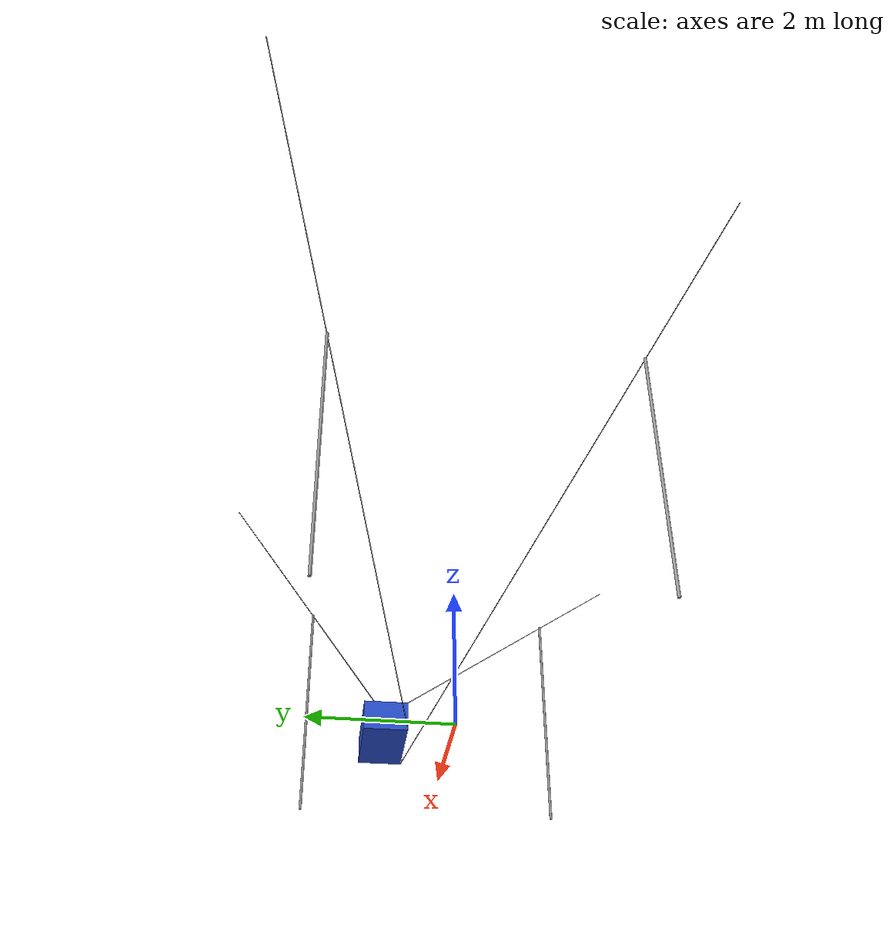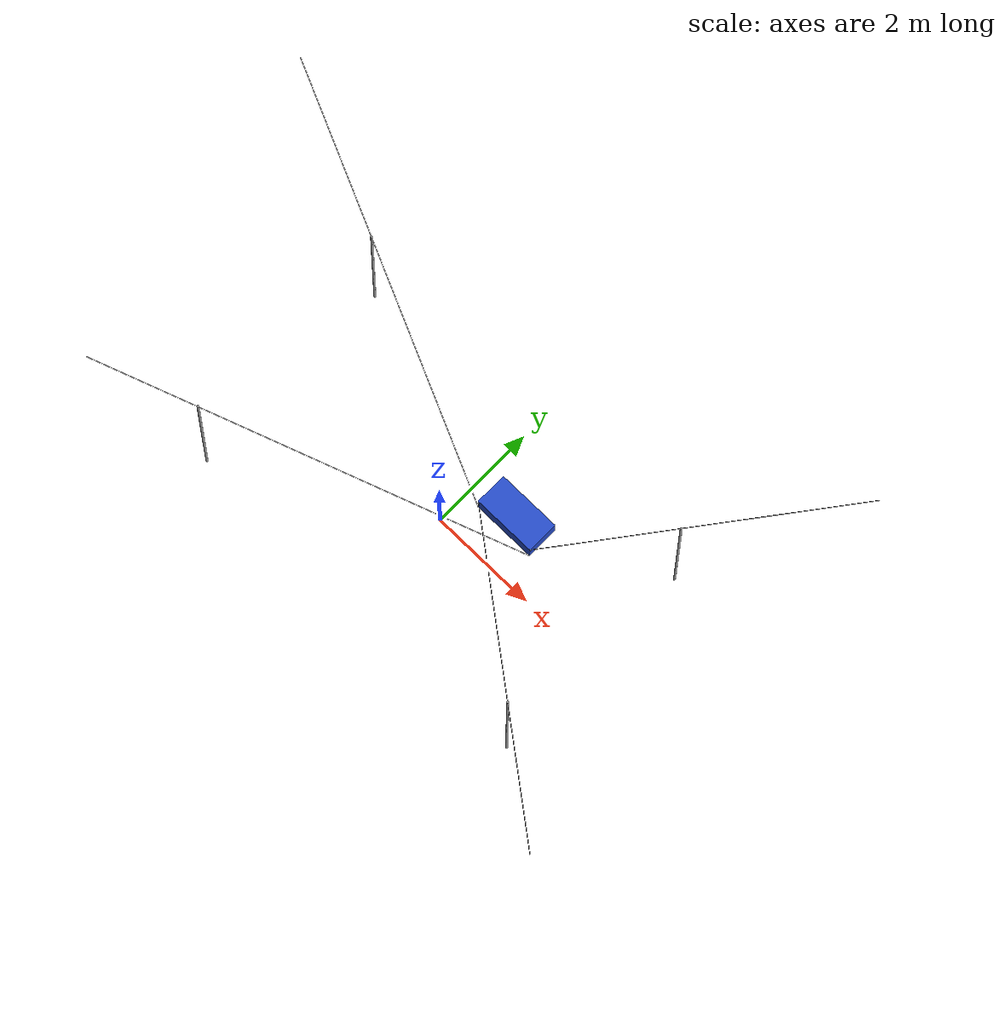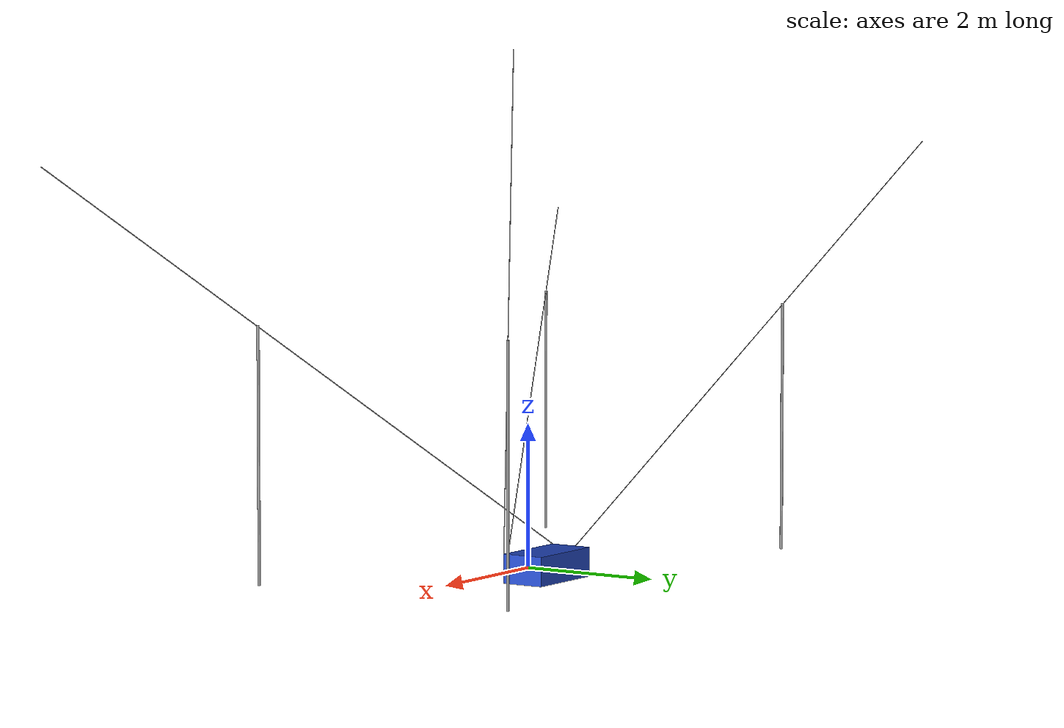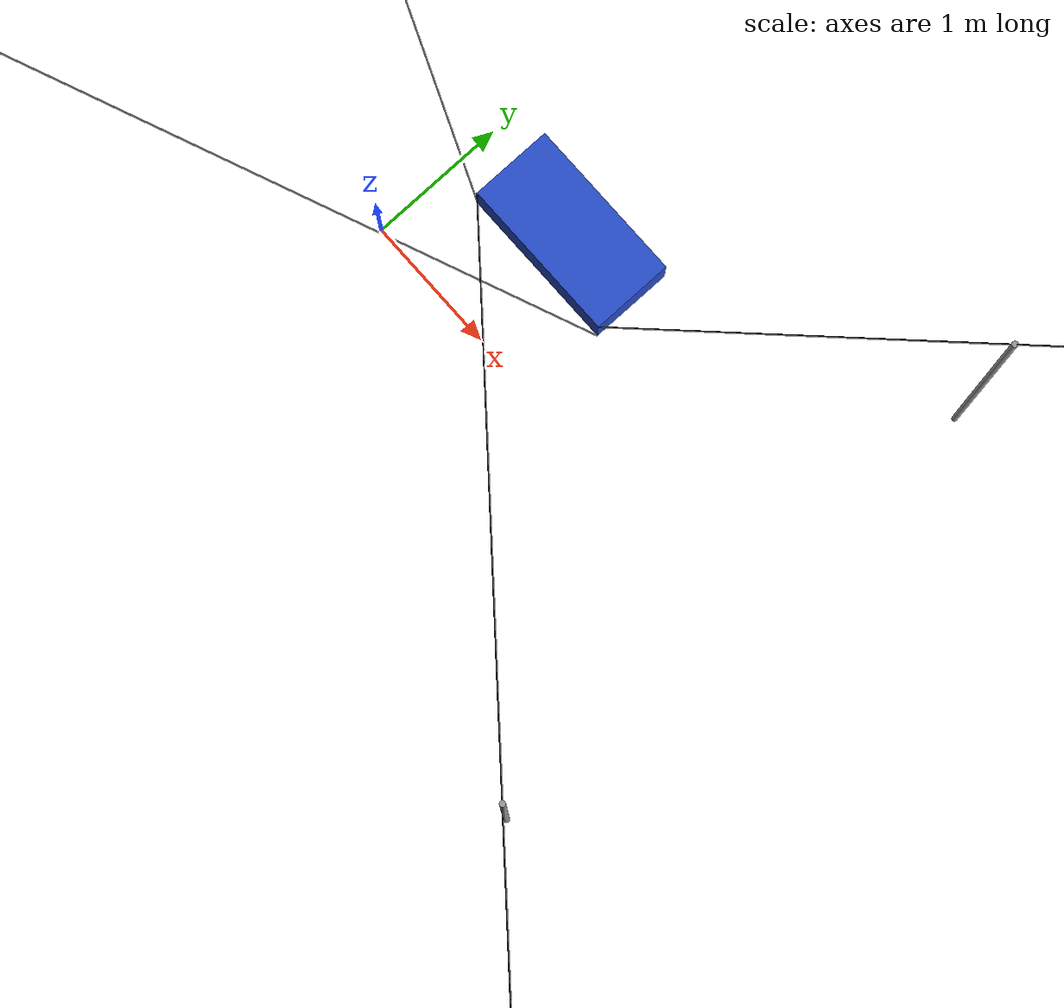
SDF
<?xml version="1.0"?>
<sdf version="1.4">
  <model name="surabaya">
    <!--Definition of the robot frame-->
    <link name="frame">
      <pose>0 0 0.02 0 0 0</pose>
      <inertial>
        <inertia>
          <ixx>100000</ixx>
          <iyy>100000</iyy>
          <izz>100000</izz>
          <ixy>0</ixy>
          <ixz>0</ixz>
          <iyz>0</iyz>
        </inertia>
        <mass>100000</mass>
      </inertial>
      <visual name="visual0">
        <geometry>
          <cylinder>
            <radius>0.02</radius>
            <length>3.5</length>
          </cylinder>
        </geometry>
        <pose>-3.500000 -2.000000 1.750000 0.000000 0.000000 0.000000</pose>
        <material>
          <script>
            <uri>file://media/materials/scripts/kitchen.material</uri>
            <name>Gazebo/Grey</name>
          </script>
        </material>
      </visual>
      <collision name="collision0">
        <geometry>
          <cylinder>
            <radius>0.02</radius>
          </cylinder>
        </geometry>
        <pose>-3.500000 -2.000000 1.750000 0.000000 0.000000 0.000000</pose>
      </collision>
      <visual name="visual1">
        <geometry>
          <cylinder>
            <radius>0.02</radius>
            <length>3.5</length>
          </cylinder>
        </geometry>
        <pose>3.500000 -2.000000 1.750000 0.000000 0.000000 0.000000</pose>
        <material>
          <script>
            <uri>file://media/materials/scripts/kitchen.material</uri>
            <name>Gazebo/Grey</name>
          </script>
        </material>
      </visual>
      <collision name="collision1">
        <geometry>
          <cylinder>
            <radius>0.02</radius>
          </cylinder>
        </geometry>
        <pose>3.500000 -2.000000 1.750000 0.000000 0.000000 0.000000</pose>
      </collision>
      <visual name="visual2">
        <geometry>
          <cylinder>
            <radius>0.02</radius>
            <length>3.5</length>
          </cylinder>
        </geometry>
        <pose>-3.500000 2.000000 1.750000 0.000000 0.000000 0.000000</pose>
        <material>
          <script>
            <uri>file://media/materials/scripts/kitchen.material</uri>
            <name>Gazebo/Grey</name>
          </script>
        </material>
      </visual>
      <collision name="collision2">
        <geometry>
          <cylinder>
            <radius>0.02</radius>
          </cylinder>
        </geometry>
        <pose>-3.500000 2.000000 1.750000 0.000000 0.000000 0.000000</pose>
      </collision>
      <visual name="visual3">
        <geometry>
          <cylinder>
            <radius>0.02</radius>
            <length>3.5</length>
          </cylinder>
        </geometry>
        <pose>3.500000 2.000000 1.750000 0.000000 0.000000 0.000000</pose>
        <material>
          <script>
            <uri>file://media/materials/scripts/kitchen.material</uri>
            <name>Gazebo/Grey</name>
          </script>
        </material>
      </visual>
      <collision name="collision3">
        <geometry>
          <cylinder>
            <radius>0.02</radius>
          </cylinder>
        </geometry>
        <pose>3.500000 2.000000 1.750000 0.000000 0.000000 0.000000</pose>
      </collision>
    </link>
    <!--Definition of the robot cables-->
    <!--Definition of the robot platform-->
    <link name="platform">
      <pose>0.900000 0.900000 0.220000 0.000000 0.000000 0.000000</pose>
      <visual name="visualpf">
        <geometry>
          <box>
            <size>1.200000 0.600000 0.400000</size>
          </box>
        </geometry>
        <material>
          <script>
            <uri>file://media/materials/scripts/kitchen.material</uri>
            <name>Gazebo/Blue</name>
          </script>
        </material>
      </visual>
      <collision name="collisionpf">
        <geometry>
          <box>
            <size>1.200000 0.600000 0.400000</size>
          </box>
        </geometry>
      </collision>
      <inertial>
        <inertia>
          <ixx>100.0</ixx>
          <iyy>100.0</iyy>
          <izz>100.0</izz>
          <ixy>0.0</ixy>
          <ixz>0.0</ixz>
          <iyz>0.0</iyz>
        </inertia>
        <mass>150</mass>
      </inertial>
    </link>
    <link name="cable0">
      <pose>-1.814444 -1.123511 2.326853 -2.499933 0.855488 -1.881845</pose>
      <visual name="visual">
        <geometry>
          <cylinder>
            <radius>0.005</radius>
            <length>8.78125275801</length>
          </cylinder>
        </geometry>
        <material>
          <script>
            <uri>file://media/materials/scripts/kitchen.material</uri>
            <name>Gazebo/Black</name>
          </script>
        </material>
      </visual>
      <inertial>
        <inertia>
          <ixx>0.001</ixx>
          <iyy>0.001</iyy>
          <izz>0.001</izz>
          <ixy>0</ixy>
          <ixz>0</ixz>
          <iyz>0</iyz>
        </inertia>
        <mass>0.001</mass>
      </inertial>
    </link>
    <link name="virt_X0">
      <inertial>
        <inertia>
          <ixx>0.001</ixx>
          <iyy>0.001</iyy>
          <izz>0.001</izz>
          <ixy>0</ixy>
          <ixz>0</ixz>
          <iyz>0</iyz>
        </inertia>
        <mass>0.001</mass>
      </inertial>
      <pose>-3.500000 -2.000000 3.500000 -2.499933 0.855488 -1.881845</pose>
    </link>
    <joint name="rev_X0" type="revolute">
      <pose>0 0 0 -2.499933 0.855488 -1.881845</pose>
      <parent>frame</parent>
      <child>virt_X0</child>
      <axis>
        <xyz>-0.200727 -0.624378 -0.754891</xyz>
        <limit>
          <effort>1000</effort>
          <velocity>10</velocity>
        </limit>
        <dynamics>
          <damping>0.01</damping>
        </dynamics>
      </axis>
    </joint>
    <link name="virt_Y0">
      <inertial>
        <inertia>
          <ixx>0.001</ixx>
          <iyy>0.001</iyy>
          <izz>0.001</izz>
          <ixy>0</ixy>
          <ixz>0</ixz>
          <iyz>0</iyz>
        </inertia>
        <mass>0.001</mass>
      </inertial>
      <pose>-3.500000 -2.000000 3.500000 -2.499933 0.855488 -1.881845</pose>
    </link>
    <joint name="rev_Y0" type="revolute">
      <pose>0 0 0 -2.499933 0.855488 -1.881845</pose>
      <parent>virt_X0</parent>
      <child>virt_Y0</child>
      <axis>
        <xyz>-0.624378 0.675323 -0.392543</xyz>
        <limit>
          <effort>1000</effort>
          <velocity>10</velocity>
        </limit>
        <dynamics>
          <damping>0.01</damping>
        </dynamics>
      </axis>
    </joint>
    <joint name="cable0" type="prismatic">
      <pose>0 0 -1.480129 -2.499933 0.855488 -1.881845</pose>
      <parent>virt_Y0</parent>
      <child>cable0</child>
      <axis>
        <xyz>-0.754891 -0.392543 0.525404</xyz>
        <limit>
          <lower>-4.390626379</lower>
          <upper>4.390626379</upper>
          <effort>10000</effort>
          <velocity>10</velocity>
        </limit>
        <dynamics>
          <damping>1</damping>
        </dynamics>
      </axis>
    </joint>
    <link name="virt_Xpf0">
      <inertial>
        <inertia>
          <ixx>0.001</ixx>
          <iyy>0.001</iyy>
          <izz>0.001</izz>
          <ixy>0</ixy>
          <ixz>0</ixz>
          <iyz>0</iyz>
        </inertia>
        <mass>0.001</mass>
      </inertial>
      <pose>1.500000 0.600000 0.020000 -2.499933 0.855488 -1.881845</pose>
    </link>
    <joint name="rev_Xpf0" type="revolute">
      <pose>0 0 0 -2.499933 0.855488 -1.881845</pose>
      <parent>platform</parent>
      <child>virt_Xpf0</child>
      <axis>
        <xyz>1 0 0</xyz>
        <limit>
          <effort>1000</effort>
          <velocity>10</velocity>
        </limit>
        <dynamics>
          <damping>0.01</damping>
        </dynamics>
      </axis>
    </joint>
    <link name="virt_Ypf0">
      <inertial>
        <inertia>
          <ixx>0.001</ixx>
          <iyy>0.001</iyy>
          <izz>0.001</izz>
          <ixy>0</ixy>
          <ixz>0</ixz>
          <iyz>0</iyz>
        </inertia>
        <mass>0.001</mass>
      </inertial>
      <pose>1.500000 0.600000 0.020000 -2.499933 0.855488 -1.881845</pose>
    </link>
    <joint name="rev_Ypf0" type="revolute">
      <pose>0 0 0 -2.499933 0.855488 -1.881845</pose>
      <parent>virt_Xpf0</parent>
      <child>virt_Ypf0</child>
      <axis>
        <xyz>0 1 0</xyz>
        <limit>
          <effort>1000</effort>
          <velocity>10</velocity>
        </limit>
        <dynamics>
          <damping>0.01</damping>
        </dynamics>
      </axis>
    </joint>
    <joint name="rev_Zpf0" type="revolute">
      <pose>0 0 0 -2.499933 0.855488 -1.881845</pose>
      <child>virt_Ypf0</child>
      <parent>cable0</parent>
      <axis>
        <xyz>0 0 1</xyz>
        <limit>
          <effort>1000</effort>
          <velocity>10</velocity>
        </limit>
        <dynamics>
          <damping>0.01</damping>
        </dynamics>
      </axis>
    </joint>
    <link name="cable1">
      <pose>3.030015 -1.618137 3.047639 -2.440501 -0.671017 1.523332</pose>
      <visual name="visual">
        <geometry>
          <cylinder>
            <radius>0.005</radius>
            <length>8.78125275801</length>
          </cylinder>
        </geometry>
        <material>
          <script>
            <uri>file://media/materials/scripts/kitchen.material</uri>
            <name>Gazebo/Black</name>
          </script>
        </material>
      </visual>
      <inertial>
        <inertia>
          <ixx>0.001</ixx>
          <iyy>0.001</iyy>
          <izz>0.001</izz>
          <ixy>0</ixy>
          <ixz>0</ixz>
          <iyz>0</iyz>
        </inertia>
        <mass>0.001</mass>
      </inertial>
    </link>
    <link name="virt_X1">
      <inertial>
        <inertia>
          <ixx>0.001</ixx>
          <iyy>0.001</iyy>
          <izz>0.001</izz>
          <ixy>0</ixy>
          <ixz>0</ixz>
          <iyz>0</iyz>
        </inertia>
        <mass>0.001</mass>
      </inertial>
      <pose>3.500000 -2.000000 3.500000 -2.440501 -0.671017 1.523332</pose>
    </link>
    <joint name="rev_X1" type="revolute">
      <pose>0 0 0 -2.440501 -0.671017 1.523332</pose>
      <parent>frame</parent>
      <child>virt_X1</child>
      <axis>
        <xyz>0.037159 0.782308 0.621783</xyz>
        <limit>
          <effort>1000</effort>
          <velocity>10</velocity>
        </limit>
        <dynamics>
          <damping>0.01</damping>
        </dynamics>
      </axis>
    </joint>
    <link name="virt_Y1">
      <inertial>
        <inertia>
          <ixx>0.001</ixx>
          <iyy>0.001</iyy>
          <izz>0.001</izz>
          <ixy>0</ixy>
          <ixz>0</ixz>
          <iyz>0</iyz>
        </inertia>
        <mass>0.001</mass>
      </inertial>
      <pose>3.500000 -2.000000 3.500000 -2.440501 -0.671017 1.523332</pose>
    </link>
    <joint name="rev_Y1" type="revolute">
      <pose>0 0 0 -2.440501 -0.671017 1.523332</pose>
      <parent>virt_X1</parent>
      <child>virt_Y1</child>
      <axis>
        <xyz>0.782308 0.364375 -0.505198</xyz>
        <limit>
          <effort>1000</effort>
          <velocity>10</velocity>
        </limit>
        <dynamics>
          <damping>0.01</damping>
        </dynamics>
      </axis>
    </joint>
    <joint name="cable1" type="prismatic">
      <pose>0 0 -0.644853 -2.440501 -0.671017 1.523332</pose>
      <parent>virt_Y1</parent>
      <child>cable1</child>
      <axis>
        <xyz>0.621783 -0.505198 0.598466</xyz>
        <limit>
          <lower>-4.390626379</lower>
          <upper>4.390626379</upper>
          <effort>10000</effort>
          <velocity>10</velocity>
        </limit>
        <dynamics>
          <damping>1</damping>
        </dynamics>
      </axis>
    </joint>
    <link name="virt_Xpf1">
      <inertial>
        <inertia>
          <ixx>0.001</ixx>
          <iyy>0.001</iyy>
          <izz>0.001</izz>
          <ixy>0</ixy>
          <ixz>0</ixz>
          <iyz>0</iyz>
        </inertia>
        <mass>0.001</mass>
      </inertial>
      <pose>0.300000 0.600000 0.420000 -2.440501 -0.671017 1.523332</pose>
    </link>
    <joint name="rev_Xpf1" type="revolute">
      <pose>0 0 0 -2.440501 -0.671017 1.523332</pose>
      <parent>platform</parent>
      <child>virt_Xpf1</child>
      <axis>
        <xyz>1 0 0</xyz>
        <limit>
          <effort>1000</effort>
          <velocity>10</velocity>
        </limit>
        <dynamics>
          <damping>0.01</damping>
        </dynamics>
      </axis>
    </joint>
    <link name="virt_Ypf1">
      <inertial>
        <inertia>
          <ixx>0.001</ixx>
          <iyy>0.001</iyy>
          <izz>0.001</izz>
          <ixy>0</ixy>
          <ixz>0</ixz>
          <iyz>0</iyz>
        </inertia>
        <mass>0.001</mass>
      </inertial>
      <pose>0.300000 0.600000 0.420000 -2.440501 -0.671017 1.523332</pose>
    </link>
    <joint name="rev_Ypf1" type="revolute">
      <pose>0 0 0 -2.440501 -0.671017 1.523332</pose>
      <parent>virt_Xpf1</parent>
      <child>virt_Ypf1</child>
      <axis>
        <xyz>0 1 0</xyz>
        <limit>
          <effort>1000</effort>
          <velocity>10</velocity>
        </limit>
        <dynamics>
          <damping>0.01</damping>
        </dynamics>
      </axis>
    </joint>
    <joint name="rev_Zpf1" type="revolute">
      <pose>0 0 0 -2.440501 -0.671017 1.523332</pose>
      <child>virt_Ypf1</child>
      <parent>cable1</parent>
      <axis>
        <xyz>0 0 1</xyz>
        <limit>
          <effort>1000</effort>
          <velocity>10</velocity>
        </limit>
        <dynamics>
          <damping>0.01</damping>
        </dynamics>
      </axis>
    </joint>
    <link name="cable2">
      <pose>-2.824701 1.751206 2.881568 2.759106 0.791880 2.274100</pose>
      <visual name="visual">
        <geometry>
          <cylinder>
            <radius>0.005</radius>
            <length>8.78125275801</length>
          </cylinder>
        </geometry>
        <material>
          <script>
            <uri>file://media/materials/scripts/kitchen.material</uri>
            <name>Gazebo/Black</name>
          </script>
        </material>
      </visual>
      <inertial>
        <inertia>
          <ixx>0.001</ixx>
          <iyy>0.001</iyy>
          <izz>0.001</izz>
          <ixy>0</ixy>
          <ixz>0</ixz>
          <iyz>0</iyz>
        </inertia>
        <mass>0.001</mass>
      </inertial>
    </link>
    <link name="virt_X2">
      <inertial>
        <inertia>
          <ixx>0.001</ixx>
          <iyy>0.001</iyy>
          <izz>0.001</izz>
          <ixy>0</ixy>
          <ixz>0</ixz>
          <iyz>0</iyz>
        </inertia>
        <mass>0.001</mass>
      </inertial>
      <pose>-3.500000 2.000000 3.500000 2.759106 0.791880 2.274100</pose>
    </link>
    <joint name="rev_X2" type="revolute">
      <pose>0 0 0 2.759106 0.791880 2.274100</pose>
      <parent>frame</parent>
      <child>virt_X2</child>
      <axis>
        <xyz>-0.454341 0.535810 -0.711675</xyz>
        <limit>
          <effort>1000</effort>
          <velocity>10</velocity>
        </limit>
        <dynamics>
          <damping>0.01</damping>
        </dynamics>
      </axis>
    </joint>
    <link name="virt_Y2">
      <inertial>
        <inertia>
          <ixx>0.001</ixx>
          <iyy>0.001</iyy>
          <izz>0.001</izz>
          <ixy>0</ixy>
          <ixz>0</ixz>
          <iyz>0</iyz>
        </inertia>
        <mass>0.001</mass>
      </inertial>
      <pose>-3.500000 2.000000 3.500000 2.759106 0.791880 2.274100</pose>
    </link>
    <joint name="rev_Y2" type="revolute">
      <pose>0 0 0 2.759106 0.791880 2.274100</pose>
      <parent>virt_X2</parent>
      <child>virt_Y2</child>
      <axis>
        <xyz>0.535810 0.802596 0.262196</xyz>
        <limit>
          <effort>1000</effort>
          <velocity>10</velocity>
        </limit>
        <dynamics>
          <damping>0.01</damping>
        </dynamics>
      </axis>
    </joint>
    <joint name="cable2" type="prismatic">
      <pose>0 0 -0.780260 2.759106 0.791880 2.274100</pose>
      <parent>virt_Y2</parent>
      <child>cable2</child>
      <axis>
        <xyz>-0.711675 0.262196 0.651745</xyz>
        <limit>
          <lower>-4.390626379</lower>
          <upper>4.390626379</upper>
          <effort>10000</effort>
          <velocity>10</velocity>
        </limit>
        <dynamics>
          <damping>1</damping>
        </dynamics>
      </axis>
    </joint>
    <link name="virt_Xpf2">
      <inertial>
        <inertia>
          <ixx>0.001</ixx>
          <iyy>0.001</iyy>
          <izz>0.001</izz>
          <ixy>0</ixy>
          <ixz>0</ixz>
          <iyz>0</iyz>
        </inertia>
        <mass>0.001</mass>
      </inertial>
      <pose>0.300000 0.600000 0.020000 2.759106 0.791880 2.274100</pose>
    </link>
    <joint name="rev_Xpf2" type="revolute">
      <pose>0 0 0 2.759106 0.791880 2.274100</pose>
      <parent>platform</parent>
      <child>virt_Xpf2</child>
      <axis>
        <xyz>1 0 0</xyz>
        <limit>
          <effort>1000</effort>
          <velocity>10</velocity>
        </limit>
        <dynamics>
          <damping>0.01</damping>
        </dynamics>
      </axis>
    </joint>
    <link name="virt_Ypf2">
      <inertial>
        <inertia>
          <ixx>0.001</ixx>
          <iyy>0.001</iyy>
          <izz>0.001</izz>
          <ixy>0</ixy>
          <ixz>0</ixz>
          <iyz>0</iyz>
        </inertia>
        <mass>0.001</mass>
      </inertial>
      <pose>0.300000 0.600000 0.020000 2.759106 0.791880 2.274100</pose>
    </link>
    <joint name="rev_Ypf2" type="revolute">
      <pose>0 0 0 2.759106 0.791880 2.274100</pose>
      <parent>virt_Xpf2</parent>
      <child>virt_Ypf2</child>
      <axis>
        <xyz>0 1 0</xyz>
        <limit>
          <effort>1000</effort>
          <velocity>10</velocity>
        </limit>
        <dynamics>
          <damping>0.01</damping>
        </dynamics>
      </axis>
    </joint>
    <joint name="rev_Zpf2" type="revolute">
      <pose>0 0 0 2.759106 0.791880 2.274100</pose>
      <child>virt_Ypf2</child>
      <parent>cable2</parent>
      <axis>
        <xyz>0 0 1</xyz>
        <limit>
          <effort>1000</effort>
          <velocity>10</velocity>
        </limit>
        <dynamics>
          <damping>0.01</damping>
        </dynamics>
      </axis>
    </joint>
    <link name="cable3">
      <pose>3.734307 2.164015 3.860833 2.714965 -0.533885 -1.801807</pose>
      <visual name="visual">
        <geometry>
          <cylinder>
            <radius>0.005</radius>
            <length>8.78125275801</length>
          </cylinder>
        </geometry>
        <material>
          <script>
            <uri>file://media/materials/scripts/kitchen.material</uri>
            <name>Gazebo/Black</name>
          </script>
        </material>
      </visual>
      <inertial>
        <inertia>
          <ixx>0.001</ixx>
          <iyy>0.001</iyy>
          <izz>0.001</izz>
          <ixy>0</ixy>
          <ixz>0</ixz>
          <iyz>0</iyz>
        </inertia>
        <mass>0.001</mass>
      </inertial>
    </link>
    <link name="virt_X3">
      <inertial>
        <inertia>
          <ixx>0.001</ixx>
          <iyy>0.001</iyy>
          <izz>0.001</izz>
          <ixy>0</ixy>
          <ixz>0</ixz>
          <iyz>0</iyz>
        </inertia>
        <mass>0.001</mass>
      </inertial>
      <pose>3.500000 2.000000 3.500000 2.714965 -0.533885 -1.801807</pose>
    </link>
    <joint name="rev_X3" type="revolute">
      <pose>0 0 0 2.714965 -0.533885 -1.801807</pose>
      <parent>frame</parent>
      <child>virt_X3</child>
      <axis>
        <xyz>-0.197099 -0.837969 0.508881</xyz>
        <limit>
          <effort>1000</effort>
          <velocity>10</velocity>
        </limit>
        <dynamics>
          <damping>0.01</damping>
        </dynamics>
      </axis>
    </joint>
    <link name="virt_Y3">
      <inertial>
        <inertia>
          <ixx>0.001</ixx>
          <iyy>0.001</iyy>
          <izz>0.001</izz>
          <ixy>0</ixy>
          <ixz>0</ixz>
          <iyz>0</iyz>
        </inertia>
        <mass>0.001</mass>
      </inertial>
      <pose>3.500000 2.000000 3.500000 2.714965 -0.533885 -1.801807</pose>
    </link>
    <joint name="rev_Y3" type="revolute">
      <pose>0 0 0 2.714965 -0.533885 -1.801807</pose>
      <parent>virt_X3</parent>
      <child>virt_Y3</child>
      <axis>
        <xyz>-0.837969 0.413422 0.356217</xyz>
        <limit>
          <effort>1000</effort>
          <velocity>10</velocity>
        </limit>
        <dynamics>
          <damping>0.01</damping>
        </dynamics>
      </axis>
    </joint>
    <joint name="cable3" type="prismatic">
      <pose>0 0 0.514377 2.714965 -0.533885 -1.801807</pose>
      <parent>virt_Y3</parent>
      <child>cable3</child>
      <axis>
        <xyz>0.508881 0.356217 0.783677</xyz>
        <limit>
          <lower>-4.390626379</lower>
          <upper>4.390626379</upper>
          <effort>10000</effort>
          <velocity>10</velocity>
        </limit>
        <dynamics>
          <damping>1</damping>
        </dynamics>
      </axis>
    </joint>
    <link name="virt_Xpf3">
      <inertial>
        <inertia>
          <ixx>0.001</ixx>
          <iyy>0.001</iyy>
          <izz>0.001</izz>
          <ixy>0</ixy>
          <ixz>0</ixz>
          <iyz>0</iyz>
        </inertia>
        <mass>0.001</mass>
      </inertial>
      <pose>1.500000 0.600000 0.420000 2.714965 -0.533885 -1.801807</pose>
    </link>
    <joint name="rev_Xpf3" type="revolute">
      <pose>0 0 0 2.714965 -0.533885 -1.801807</pose>
      <parent>platform</parent>
      <child>virt_Xpf3</child>
      <axis>
        <xyz>1 0 0</xyz>
        <limit>
          <effort>1000</effort>
          <velocity>10</velocity>
        </limit>
        <dynamics>
          <damping>0.01</damping>
        </dynamics>
      </axis>
    </joint>
    <link name="virt_Ypf3">
      <inertial>
        <inertia>
          <ixx>0.001</ixx>
          <iyy>0.001</iyy>
          <izz>0.001</izz>
          <ixy>0</ixy>
          <ixz>0</ixz>
          <iyz>0</iyz>
        </inertia>
        <mass>0.001</mass>
      </inertial>
      <pose>1.500000 0.600000 0.420000 2.714965 -0.533885 -1.801807</pose>
    </link>
    <joint name="rev_Ypf3" type="revolute">
      <pose>0 0 0 2.714965 -0.533885 -1.801807</pose>
      <parent>virt_Xpf3</parent>
      <child>virt_Ypf3</child>
      <axis>
        <xyz>0 1 0</xyz>
        <limit>
          <effort>1000</effort>
          <velocity>10</velocity>
        </limit>
        <dynamics>
          <damping>0.01</damping>
        </dynamics>
      </axis>
    </joint>
    <joint name="rev_Zpf3" type="revolute">
      <pose>0 0 0 2.714965 -0.533885 -1.801807</pose>
      <child>virt_Ypf3</child>
      <parent>cable3</parent>
      <axis>
        <xyz>0 0 1</xyz>
        <limit>
          <effort>1000</effort>
          <velocity>10</velocity>
        </limit>
        <dynamics>
          <damping>0.01</damping>
        </dynamics>
      </axis>
    </joint>
    <plugin filename="libcdpr_plugin.so" name="cdpr_plugin"/>
  </model>
</sdf>
